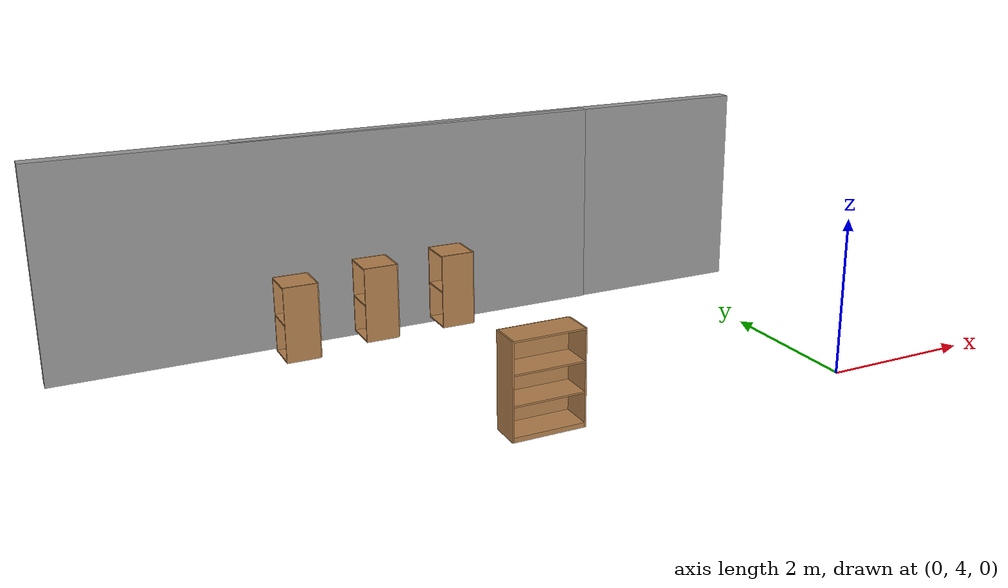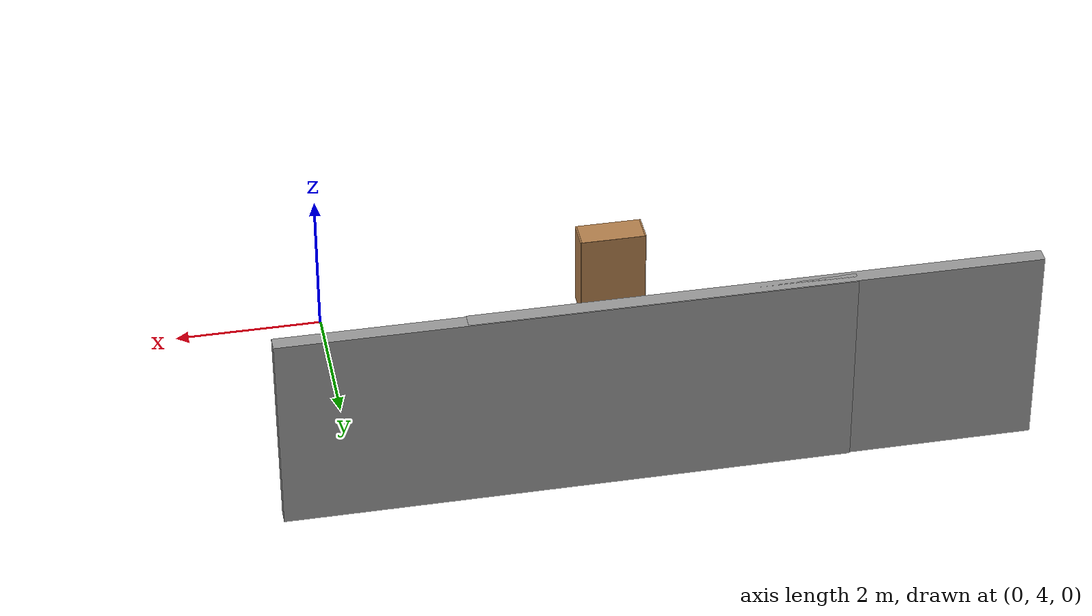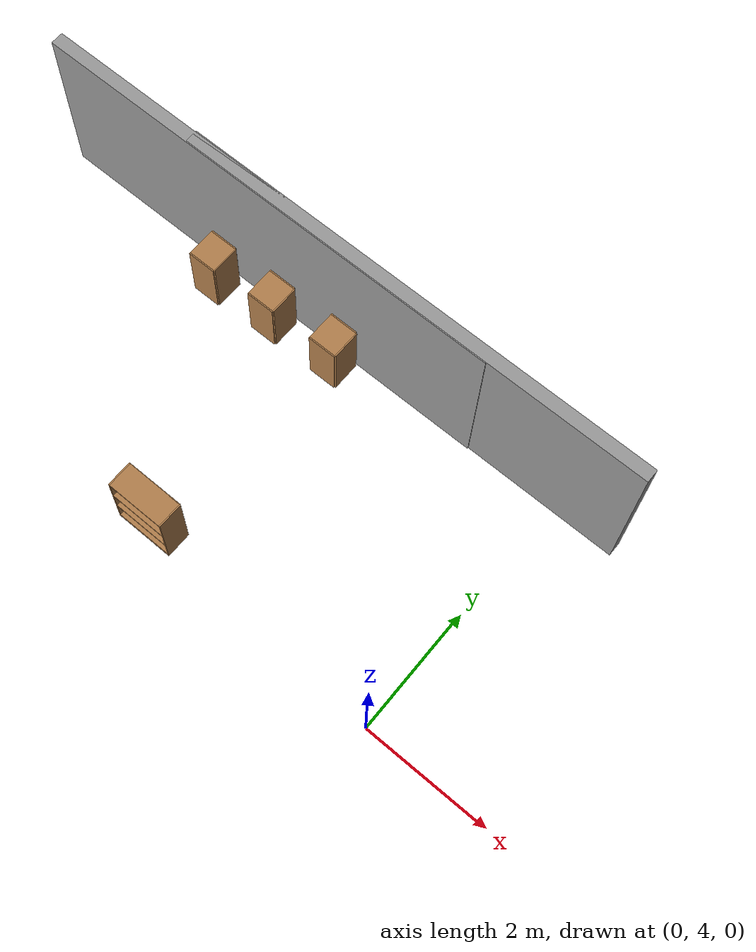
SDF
<sdf version="1.4">
 <world name="default">
  <model name="cabinet">
   <static>1</static>
   <link name="cabinet_bottom_plate">
    <inertial>
     <pose>0 0 -1 0 -0 0</pose>
     <inertia><ixx>2.05</ixx><ixy>0</ixy><ixz>0</ixz><iyy>2.05</iyy><iyz>0</iyz><izz>2.05</izz></inertia>
     <mass>25</mass>
    </inertial>
    <collision name="cabinet_bottom_plate_geom">
     <pose>0 0 0.01 0 -0 0</pose>
     <geometry><box><size>0.45 0.45 0.02</size></box></geometry>
    </collision>
    <visual name="cabinet_bottom_plate_geom_visual">
     <pose>0 0 0.01 0 -0 0</pose>
     <geometry><box><size>0.45 0.45 0.02</size></box></geometry>
     <material>
      <script><uri>file://media/materials/scripts/gazebo.material</uri><name>Gazebo/Wood</name></script>
     </material>
    </visual>
    <collision name="cabinet_bottom_plate_geom_cabinet_back_plate">
     <pose>0.235 0 0.51 0 -0 0</pose>
     <geometry><box><size>0.02 0.45 1.02</size></box></geometry>
    </collision>
    <visual name="cabinet_bottom_plate_geom_cabinet_back_plate_visual">
     <pose>0.235 0 0.51 0 -0 0</pose>
     <geometry><box><size>0.02 0.45 1.02</size></box></geometry>
     <material>
      <script><uri>file://media/materials/scripts/gazebo.material</uri><name>Gazebo/Wood</name></script>
     </material>
    </visual>
    <collision name="cabinet_bottom_plate_geom_cabinet_left_plate">
     <pose>0 0.235 0.51 0 -0 0</pose>
     <geometry><box><size>0.45 0.02 1.02</size></box></geometry>
    </collision>
    <visual name="cabinet_bottom_plate_geom_cabinet_left_plate_visual">
     <pose>0 0.235 0.51 0 -0 0</pose>
     <geometry><box><size>0.45 0.02 1.02</size></box></geometry>
     <material>
      <script><uri>file://media/materials/scripts/gazebo.material</uri><name>Gazebo/Wood</name></script>
     </material>
    </visual>
    <collision name="cabinet_bottom_plate_geom_cabinet_middle_plate">
     <pose>0 0 0.51 0 -0 0</pose>
     <geometry><box><size>0.45 0.45 0.02</size></box></geometry>
    </collision>
    <visual name="cabinet_bottom_plate_geom_cabinet_middle_plate_visual">
     <pose>0 0 0.51 0 -0 0</pose>
     <geometry><box><size>0.45 0.45 0.02</size></box></geometry>
     <material>
      <script><uri>file://media/materials/scripts/gazebo.material</uri><name>Gazebo/Wood</name></script>
     </material>
    </visual>
    <collision name="cabinet_bottom_plate_geom_cabinet_right_plate">
     <pose>0 -0.235 0.51 0 -0 0</pose>
     <geometry><box><size>0.45 0.02 1.02</size></box></geometry>
    </collision>
    <visual name="cabinet_bottom_plate_geom_cabinet_right_plate_visual">
     <pose>0 -0.235 0.51 0 -0 0</pose>
     <geometry><box><size>0.45 0.02 1.02</size></box></geometry>
     <material>
      <script><uri>file://media/materials/scripts/gazebo.material</uri><name>Gazebo/Wood</name></script>
     </material>
    </visual>
    <collision name="cabinet_bottom_plate_geom_cabinet_top_plate">
     <pose>0 0 1.01 0 -0 0</pose>
     <geometry><box><size>0.45 0.45 0.02</size></box></geometry>
    </collision>
    <visual name="cabinet_bottom_plate_geom_cabinet_top_plate_visual">
     <pose>0 0 1.01 0 -0 0</pose>
     <geometry><box><size>0.45 0.45 0.02</size></box></geometry>
     <material>
      <script><uri>file://media/materials/scripts/gazebo.material</uri><name>Gazebo/Wood</name></script>
     </material>
    </visual>
    <velocity_decay><linear>0</linear><angular>0</angular></velocity_decay>
   </link>
   <pose>-4.77285 7.64898 0.084434 0 -0 0</pose>
  </model>
  <model name="grey_wall">
   <static>1</static>
   <link name="link">
    <pose>0 0 1.4 0 -0 0</pose>
    <collision name="collision"><geometry><box><size>7.5 0.2 2.8</size></box></geometry></collision>
    <visual name="visual">
     <cast_shadows>0</cast_shadows>
     <geometry><box><size>7.5 0.2 2.8</size></box></geometry>
     <material>
      <script>
       <uri>model://grey_wall/materials/scripts</uri>
       <uri>model://grey_wall/materials/textures</uri>
       <name>vrc/grey_wall</name>
      </script>
     </material>
    </visual>
    <velocity_decay><linear>0</linear><angular>0</angular></velocity_decay>
   </link>
   <pose>-5.17852 8.05791 0 0 -0 0</pose>
  </model>
  <model name="bookshelf_1">
   <static>1</static>
   <link name="link">
    <inertial><mass>1</mass></inertial>
    <collision name="back">
     <pose>0 0.005 0.6 0 -0 0</pose>
     <geometry><box><size>0.9 0.01 1.2</size></box></geometry>
    </collision>
    <visual name="visual1">
     <pose>0 0.005 0.6 0 -0 0</pose>
     <geometry><box><size>0.9 0.01 1.2</size></box></geometry>
     <material>
      <script><uri>file://media/materials/scripts/gazebo.material</uri><name>Gazebo/Wood</name></script>
     </material>
    </visual>
    <collision name="left_side">
     <pose>0.45 -0.195 0.6 0 -0 0</pose>
     <geometry><box><size>0.02 0.4 1.2</size></box></geometry>
    </collision>
    <visual name="visual2">
     <pose>0.45 -0.195 0.6 0 -0 0</pose>
     <geometry><box><size>0.02 0.4 1.2</size></box></geometry>
     <material>
      <script><uri>file://media/materials/scripts/gazebo.material</uri><name>Gazebo/Wood</name></script>
     </material>
    </visual>
    <collision name="right_side">
     <pose>-0.45 -0.195 0.6 0 -0 0</pose>
     <geometry><box><size>0.02 0.4 1.2</size></box></geometry>
    </collision>
    <visual name="visual3">
     <pose>-0.45 -0.195 0.6 0 -0 0</pose>
     <geometry><box><size>0.02 0.4 1.2</size></box></geometry>
     <material>
      <script><uri>file://media/materials/scripts/gazebo.material</uri><name>Gazebo/Wood</name></script>
     </material>
    </visual>
    <collision name="bottom">
     <pose>0 -0.195 0.03 0 -0 0</pose>
     <geometry><box><size>0.88 0.4 0.06</size></box></geometry>
    </collision>
    <visual name="visual4">
     <pose>0 -0.195 0.03 0 -0 0</pose>
     <geometry><box><size>0.88 0.4 0.06</size></box></geometry>
     <material>
      <script><uri>file://media/materials/scripts/gazebo.material</uri><name>Gazebo/Wood</name></script>
     </material>
    </visual>
    <collision name="top">
     <pose>0 -0.195 1.19 0 -0 0</pose>
     <geometry><box><size>0.88 0.4 0.02</size></box></geometry>
    </collision>
    <visual name="visual5">
     <pose>0 -0.195 1.19 0 -0 0</pose>
     <geometry><box><size>0.88 0.4 0.02</size></box></geometry>
     <material>
      <script><uri>file://media/materials/scripts/gazebo.material</uri><name>Gazebo/Wood</name></script>
     </material>
    </visual>
    <collision name="low_shelf">
     <pose>0 -0.195 0.43 0 -0 0</pose>
     <geometry><box><size>0.88 0.4 0.02</size></box></geometry>
    </collision>
    <visual name="visual6">
     <pose>0 -0.195 0.43 0 -0 0</pose>
     <geometry><box><size>0.88 0.4 0.02</size></box></geometry>
     <material>
      <script><uri>file://media/materials/scripts/gazebo.material</uri><name>Gazebo/Wood</name></script>
     </material>
    </visual>
    <collision name="high_shelf">
     <pose>0 -0.195 0.8 0 -0 0</pose>
     <geometry><box><size>0.88 0.4 0.02</size></box></geometry>
    </collision>
    <visual name="visual7">
     <pose>0 -0.195 0.8 0 -0 0</pose>
     <geometry><box><size>0.88 0.4 0.02</size></box></geometry>
     <material>
      <script><uri>file://media/materials/scripts/gazebo.material</uri><name>Gazebo/Wood</name></script>
     </material>
    </visual>
    <velocity_decay><linear>0</linear><angular>0</angular></velocity_decay>
   </link>
   <pose>-4.02528 4.4712 0 0 -0 0</pose>
  </model>
  <model name="grey_wall_6">
   <static>1</static>
   <link name="link">
    <pose>0 0 1.4 0 -0 0</pose>
    <collision name="collision"><geometry><box><size>7.5 0.2 2.8</size></box></geometry></collision>
    <visual name="visual">
     <cast_shadows>0</cast_shadows>
     <geometry><box><size>7.5 0.2 2.8</size></box></geometry>
     <material>
      <script>
       <uri>model://grey_wall/materials/scripts</uri>
       <uri>model://grey_wall/materials/textures</uri>
       <name>vrc/grey_wall</name>
      </script>
     </material>
    </visual>
    <velocity_decay><linear>0</linear><angular>0</angular></velocity_decay>
   </link>
   <pose>-2.71728 8.07439 0 0 -0 0</pose>
  </model>
  <model name="cabinet_0">
   <static>1</static>
   <link name="cabinet_bottom_plate">
    <inertial>
     <pose>0 0 -1 0 -0 0</pose>
     <inertia><ixx>2.05</ixx><ixy>0</ixy><ixz>0</ixz><iyy>2.05</iyy><iyz>0</iyz><izz>2.05</izz></inertia>
     <mass>25</mass>
    </inertial>
    <collision name="cabinet_bottom_plate_geom">
     <pose>0 0 0.01 0 -0 0</pose>
     <geometry><box><size>0.45 0.45 0.02</size></box></geometry>
    </collision>
    <visual name="cabinet_bottom_plate_geom_visual">
     <pose>0 0 0.01 0 -0 0</pose>
     <geometry><box><size>0.45 0.45 0.02</size></box></geometry>
     <material>
      <script><uri>file://media/materials/scripts/gazebo.material</uri><name>Gazebo/Wood</name></script>
     </material>
    </visual>
    <collision name="cabinet_bottom_plate_geom_cabinet_back_plate">
     <pose>0.235 0 0.51 0 -0 0</pose>
     <geometry><box><size>0.02 0.45 1.02</size></box></geometry>
    </collision>
    <visual name="cabinet_bottom_plate_geom_cabinet_back_plate_visual">
     <pose>0.235 0 0.51 0 -0 0</pose>
     <geometry><box><size>0.02 0.45 1.02</size></box></geometry>
     <material>
      <script><uri>file://media/materials/scripts/gazebo.material</uri><name>Gazebo/Wood</name></script>
     </material>
    </visual>
    <collision name="cabinet_bottom_plate_geom_cabinet_left_plate">
     <pose>0 0.235 0.51 0 -0 0</pose>
     <geometry><box><size>0.45 0.02 1.02</size></box></geometry>
    </collision>
    <visual name="cabinet_bottom_plate_geom_cabinet_left_plate_visual">
     <pose>0 0.235 0.51 0 -0 0</pose>
     <geometry><box><size>0.45 0.02 1.02</size></box></geometry>
     <material>
      <script><uri>file://media/materials/scripts/gazebo.material</uri><name>Gazebo/Wood</name></script>
     </material>
    </visual>
    <collision name="cabinet_bottom_plate_geom_cabinet_middle_plate">
     <pose>0 0 0.51 0 -0 0</pose>
     <geometry><box><size>0.45 0.45 0.02</size></box></geometry>
    </collision>
    <visual name="cabinet_bottom_plate_geom_cabinet_middle_plate_visual">
     <pose>0 0 0.51 0 -0 0</pose>
     <geometry><box><size>0.45 0.45 0.02</size></box></geometry>
     <material>
      <script><uri>file://media/materials/scripts/gazebo.material</uri><name>Gazebo/Wood</name></script>
     </material>
    </visual>
    <collision name="cabinet_bottom_plate_geom_cabinet_right_plate">
     <pose>0 -0.235 0.51 0 -0 0</pose>
     <geometry><box><size>0.45 0.02 1.02</size></box></geometry>
    </collision>
    <visual name="cabinet_bottom_plate_geom_cabinet_right_plate_visual">
     <pose>0 -0.235 0.51 0 -0 0</pose>
     <geometry><box><size>0.45 0.02 1.02</size></box></geometry>
     <material>
      <script><uri>file://media/materials/scripts/gazebo.material</uri><name>Gazebo/Wood</name></script>
     </material>
    </visual>
    <collision name="cabinet_bottom_plate_geom_cabinet_top_plate">
     <pose>0 0 1.01 0 -0 0</pose>
     <geometry><box><size>0.45 0.45 0.02</size></box></geometry>
    </collision>
    <visual name="cabinet_bottom_plate_geom_cabinet_top_plate_visual">
     <pose>0 0 1.01 0 -0 0</pose>
     <geometry><box><size>0.45 0.45 0.02</size></box></geometry>
     <material>
      <script><uri>file://media/materials/scripts/gazebo.material</uri><name>Gazebo/Wood</name></script>
     </material>
    </visual>
    <velocity_decay><linear>0</linear><angular>0</angular></velocity_decay>
   </link>
   <pose>-3.67272 7.67564 0.090283 0 -0 0</pose>
  </model>
  <model name="cabinet_1">
   <static>1</static>
   <link name="cabinet_bottom_plate">
    <inertial>
     <pose>0 0 -1 0 -0 0</pose>
     <inertia><ixx>2.05</ixx><ixy>0</ixy><ixz>0</ixz><iyy>2.05</iyy><iyz>0</iyz><izz>2.05</izz></inertia>
     <mass>25</mass>
    </inertial>
    <collision name="cabinet_bottom_plate_geom">
     <pose>0 0 0.01 0 -0 0</pose>
     <geometry><box><size>0.45 0.45 0.02</size></box></geometry>
    </collision>
    <visual name="cabinet_bottom_plate_geom_visual">
     <pose>0 0 0.01 0 -0 0</pose>
     <geometry><box><size>0.45 0.45 0.02</size></box></geometry>
     <material>
      <script><uri>file://media/materials/scripts/gazebo.material</uri><name>Gazebo/Wood</name></script>
     </material>
    </visual>
    <collision name="cabinet_bottom_plate_geom_cabinet_back_plate">
     <pose>0.235 0 0.51 0 -0 0</pose>
     <geometry><box><size>0.02 0.45 1.02</size></box></geometry>
    </collision>
    <visual name="cabinet_bottom_plate_geom_cabinet_back_plate_visual">
     <pose>0.235 0 0.51 0 -0 0</pose>
     <geometry><box><size>0.02 0.45 1.02</size></box></geometry>
     <material>
      <script><uri>file://media/materials/scripts/gazebo.material</uri><name>Gazebo/Wood</name></script>
     </material>
    </visual>
    <collision name="cabinet_bottom_plate_geom_cabinet_left_plate">
     <pose>0 0.235 0.51 0 -0 0</pose>
     <geometry><box><size>0.45 0.02 1.02</size></box></geometry>
    </collision>
    <visual name="cabinet_bottom_plate_geom_cabinet_left_plate_visual">
     <pose>0 0.235 0.51 0 -0 0</pose>
     <geometry><box><size>0.45 0.02 1.02</size></box></geometry>
     <material>
      <script><uri>file://media/materials/scripts/gazebo.material</uri><name>Gazebo/Wood</name></script>
     </material>
    </visual>
    <collision name="cabinet_bottom_plate_geom_cabinet_middle_plate">
     <pose>0 0 0.51 0 -0 0</pose>
     <geometry><box><size>0.45 0.45 0.02</size></box></geometry>
    </collision>
    <visual name="cabinet_bottom_plate_geom_cabinet_middle_plate_visual">
     <pose>0 0 0.51 0 -0 0</pose>
     <geometry><box><size>0.45 0.45 0.02</size></box></geometry>
     <material>
      <script><uri>file://media/materials/scripts/gazebo.material</uri><name>Gazebo/Wood</name></script>
     </material>
    </visual>
    <collision name="cabinet_bottom_plate_geom_cabinet_right_plate">
     <pose>0 -0.235 0.51 0 -0 0</pose>
     <geometry><box><size>0.45 0.02 1.02</size></box></geometry>
    </collision>
    <visual name="cabinet_bottom_plate_geom_cabinet_right_plate_visual">
     <pose>0 -0.235 0.51 0 -0 0</pose>
     <geometry><box><size>0.45 0.02 1.02</size></box></geometry>
     <material>
      <script><uri>file://media/materials/scripts/gazebo.material</uri><name>Gazebo/Wood</name></script>
     </material>
    </visual>
    <collision name="cabinet_bottom_plate_geom_cabinet_top_plate">
     <pose>0 0 1.01 0 -0 0</pose>
     <geometry><box><size>0.45 0.45 0.02</size></box></geometry>
    </collision>
    <visual name="cabinet_bottom_plate_geom_cabinet_top_plate_visual">
     <pose>0 0 1.01 0 -0 0</pose>
     <geometry><box><size>0.45 0.45 0.02</size></box></geometry>
     <material>
      <script><uri>file://media/materials/scripts/gazebo.material</uri><name>Gazebo/Wood</name></script>
     </material>
    </visual>
    <velocity_decay><linear>0</linear><angular>0</angular></velocity_decay>
   </link>
   <pose>-5.85775 7.62765 0 0 -0 0</pose>
  </model>
 </world>
</sdf>
